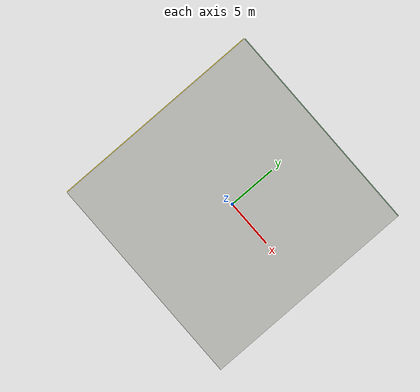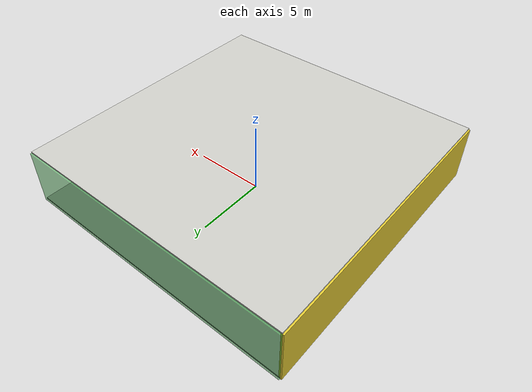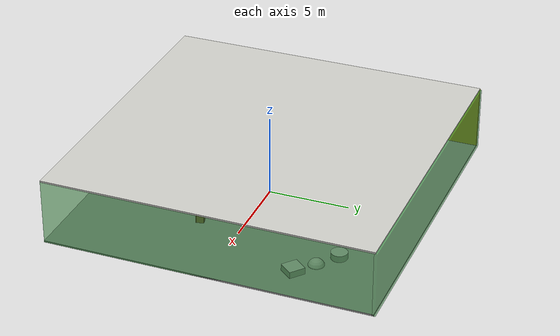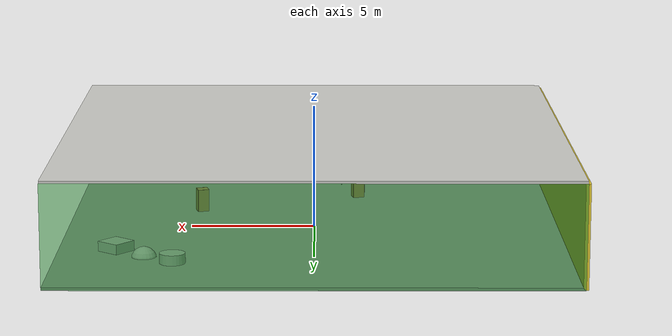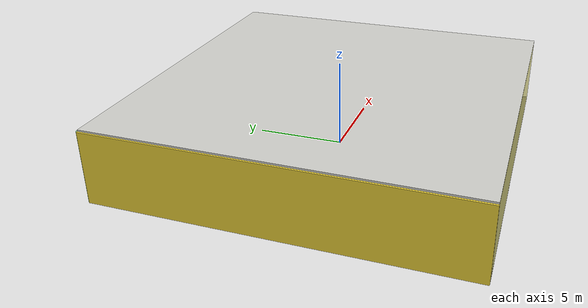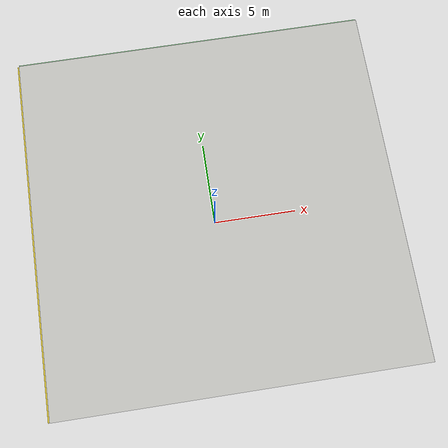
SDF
<sdf version="1.4">
 <world name="default">
  <physics type="ode">
   <max_step_size>0.001</max_step_size>
   <real_time_factor>1</real_time_factor>
   <real_time_update_rate>1000</real_time_update_rate>
   <gravity>0 0 -9.8</gravity>
  </physics>
  <scene><ambient>0.4 0.4 0.4 1</ambient><background>0.7 0.7 0.7 1</background><shadows>1</shadows></scene>
  <model name="Surrounding">
   <static>1</static>
   <link name="Ceiling">
    <collision name="Ceiling_Collision"><geometry><box><size>20 20 0.1</size></box></geometry></collision>
    <visual name="Ceiling_Visual">
     <geometry><box><size>20 20 0.1</size></box></geometry>
     <material>
      <script><uri>file://media/materials/scripts/gazebo.material</uri><name>Gazebo/CeilingTiled</name></script>
     </material>
    </visual>
    <pose>0 0 4.05 0 0 0</pose>
   </link>
   <link name="Wall_South">
    <collision name="Wall_South_Collision">
     <geometry><box><size>20 0 4</size></box></geometry>
     <pose>0 0 2 0 -0 0</pose>
    </collision>
    <visual name="Wall_South_Visual">
     <pose>0 0 2 0 -0 0</pose>
     <geometry><box><size>20 0 4</size></box></geometry>
     <material>
      <script>
       <uri>file://media/materials/scripts/gazebo.material</uri>
       <name>Gazebo/YellowTransparent</name>
      </script>
     </material>
    </visual>
    <velocity_decay><linear>0</linear><angular>0</angular></velocity_decay>
    <pose>0 -10 0 0 -0 0</pose>
   </link>
   <link name="Wall_East">
    <collision name="Wall_21_Collision">
     <geometry><box><size>20 0 4</size></box></geometry>
     <pose>0 0 2 0 -0 0</pose>
    </collision>
    <visual name="Wall_21_Visual">
     <pose>0 0 2 0 -0 0</pose>
     <geometry><box><size>20 0 4</size></box></geometry>
     <material>
      <script><uri>file://media/materials/scripts/gazebo.material</uri><name>Gazebo/GreenTransparent</name></script>
     </material>
    </visual>
    <velocity_decay><linear>0</linear><angular>0</angular></velocity_decay>
    <pose>10 0 0 0 -0 1.5708</pose>
   </link>
   <link name="Wall_North">
    <collision name="Wall_22_Collision">
     <geometry><box><size>20 0.2 4</size></box></geometry>
     <pose>0 0 2 0 -0 0</pose>
    </collision>
    <visual name="Wall_22_Visual">
     <pose>0 0 2 0 -0 0</pose>
     <geometry><box><size>20 0.2 4</size></box></geometry>
     <material>
      <script><uri>file://media/materials/scripts/gazebo.material</uri><name>Gazebo/GreenTransparent</name></script>
     </material>
    </visual>
    <velocity_decay><linear>0</linear><angular>0</angular></velocity_decay>
    <pose>0 10 0 0 -0 0</pose>
   </link>
   <link name="Wall_West">
    <collision name="Wall_23_Collision">
     <geometry><box><size>20 0.2 4</size></box></geometry>
     <pose>0 0 2 0 -0 0</pose>
    </collision>
    <visual name="Wall_23_Visual">
     <pose>0 0 2 0 -0 0</pose>
     <geometry><box><size>20 0.2 4</size></box></geometry>
     <material>
      <script><uri>file://media/materials/scripts/gazebo.material</uri><name>Gazebo/ZincYellow</name></script>
     </material>
    </visual>
    <velocity_decay><linear>0</linear><angular>0</angular></velocity_decay>
    <pose>-10 0 0 0 0 -1.5708</pose>
   </link>
   <link name="Ground_link">
    <collision name="collision">
     <pose>0 0 .05 0 -0 0</pose>
     <geometry><box><size>20 20 0.1</size></box></geometry>
    </collision>
    <visual name="visual">
     <pose>0 0 .05 0 -0 0</pose>
     <geometry><box><size>20 20 0.1</size></box></geometry>
     <material>
      <script><uri>file://media/materials/scripts/gazebo.material</uri><name>Gazebo/Grey</name></script>
     </material>
    </visual>
   </link>
   <static>1</static>
  </model>
  <spherical_coordinates>
   <surface_model>EARTH_WGS84</surface_model>
   <latitude_deg>0</latitude_deg>
   <longitude_deg>0</longitude_deg>
   <elevation>0</elevation>
   <heading_deg>0</heading_deg>
  </spherical_coordinates>
  <light name="lightball_0" type="diffuse">
   <diffuse>0.8 0.8 0.8 1</diffuse>
   <specular>0.2 0.2 0.2 1</specular>
   <attenuation>
    <range>100</range>
    <constant>0.7</constant>
    <linear>0.01</linear>
    <quadratic>0.001</quadratic>
   </attenuation>
   <direction>-0.5 0.1 -0.9</direction>
   <pose>7.63874099924 -7.63975851068 3.10632705325 0 0 0</pose>
  </light>
  <light name="lightball_1" type="diffuse">
   <diffuse>0.8 0.8 0.8 1</diffuse>
   <specular>0.2 0.2 0.2 1</specular>
   <attenuation>
    <range>100</range>
    <constant>0.7</constant>
    <linear>0.01</linear>
    <quadratic>0.001</quadratic>
   </attenuation>
   <direction>-0.5 0.1 -0.9</direction>
   <pose>9.93407221955 -0.731223642835 1.97419107181 0 0 0</pose>
  </light>
  <light name="lightball_2" type="diffuse">
   <diffuse>0.8 0.8 0.8 1</diffuse>
   <specular>0.2 0.2 0.2 1</specular>
   <attenuation>
    <range>100</range>
    <constant>0.7</constant>
    <linear>0.01</linear>
    <quadratic>0.001</quadratic>
   </attenuation>
   <direction>-0.5 0.1 -0.9</direction>
   <pose>-9.4624525961 -7.93553062533 2.71070084704 0 0 0</pose>
  </light>
  <light name="lightball_3" type="diffuse">
   <diffuse>0.8 0.8 0.8 1</diffuse>
   <specular>0.2 0.2 0.2 1</specular>
   <attenuation>
    <range>100</range>
    <constant>0.7</constant>
    <linear>0.01</linear>
    <quadratic>0.001</quadratic>
   </attenuation>
   <direction>-0.5 0.1 -0.9</direction>
   <pose>4.02303278325 8.97529651886 1.48641419685 0 0 0</pose>
  </light>
  <include><uri>model://table</uri><pose>-1.2629696623 -8.27936221509 0 0 0 1.96283121839</pose></include>
  <include><uri>model://cabinet</uri><pose>-1.84281533753 -5.16696504626 0 0 0 1.77707554328</pose></include>
  <include><uri>model://cabinet</uri><pose>4.69497578116 -2.5092327954 0 0 0 0.241759426254</pose></include>
  <include>
   <uri>model://textured_shapes</uri>
   <pose>6.56423654377 5.41862399255 0 0 0 0.880835217418</pose>
  </include>
 </world>
</sdf>

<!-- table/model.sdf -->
<sdf version="1.5">
  <model name="table">
    <static>true</static>
    <link name="link">
      <collision name="surface">
        <pose>0 0 1.0 0 0 0</pose>
        <geometry>
          <box>
            <size>1.5 0.8 0.03</size>
          </box>
        </geometry>
        <surface>
          <friction>
            <ode>
              <mu>0.6</mu>
              <mu2>0.6</mu2>
            </ode>
          </friction>
        </surface>
      </collision>
      <visual name="visual1">
        <pose>0 0 1.0 0 0 0</pose>
        <geometry>
          <box>
            <size>1.5 0.8 0.03</size>
          </box>
        </geometry>
        <material>
          <script>
            <uri>model://media/materials/scripts/gazebo.material</uri>
            <name>Gazebo/Wood</name>
          </script>
        </material>
      </visual>
      <collision name="front_left_leg">
        <pose>0.68 0.38 0.5 0 0 0</pose>
        <geometry>
          <cylinder>
            <radius>0.02</radius>
            <length>1.0</length>
          </cylinder>
        </geometry>
      </collision>
      <visual name="front_left_leg">
        <pose>0.68 0.38 0.5 0 0 0</pose>
        <geometry>
          <cylinder>
            <radius>0.02</radius>
            <length>1.0</length>
          </cylinder>
        </geometry>
        <material>
          <script>
            <uri>model://media/materials/scripts/gazebo.material</uri>
            <name>Gazebo/Grey</name>
          </script>
        </material>
      </visual>
      <collision name="front_right_leg">
        <pose>0.68 -0.38 0.5 0 0 0</pose>
        <geometry>
          <cylinder>
            <radius>0.02</radius>
            <length>1.0</length>
          </cylinder>
        </geometry>
      </collision>
      <visual name="front_right_leg">
        <pose>0.68 -0.38 0.5 0 0 0</pose>
        <geometry>
          <cylinder>
            <radius>0.02</radius>
            <length>1.0</length>
          </cylinder>
        </geometry>
        <material>
          <script>
            <uri>model://media/materials/scripts/gazebo.material</uri>
            <name>Gazebo/Grey</name>
          </script>
        </material>
      </visual>
      <collision name="back_right_leg">
        <pose>-0.68 -0.38 0.5 0 0 0</pose>
        <geometry>
          <cylinder>
            <radius>0.02</radius>
            <length>1.0</length>
          </cylinder>
        </geometry>
      </collision>
      <visual name="back_right_leg">
        <pose>-0.68 -0.38 0.5 0 0 0</pose>
        <geometry>
          <cylinder>
            <radius>0.02</radius>
            <length>1.0</length>
          </cylinder>
        </geometry>
        <material>
          <script>
            <uri>model://media/materials/scripts/gazebo.material</uri>
            <name>Gazebo/Grey</name>
          </script>
        </material>
      </visual>
      <collision name="back_left_leg">
        <pose>-0.68 0.38 0.5 0 0 0</pose>
        <geometry>
          <cylinder>
            <radius>0.02</radius>
            <length>1.0</length>
          </cylinder>
        </geometry>
      </collision>
      <visual name="back_left_leg">
        <pose>-0.68 0.38 0.5 0 0 0</pose>
        <geometry>
          <cylinder>
            <radius>0.02</radius>
            <length>1.0</length>
          </cylinder>
        </geometry>
        <material>
          <script>
            <uri>model://media/materials/scripts/gazebo.material</uri>
            <name>Gazebo/Grey</name>
          </script>
        </material>
      </visual>
    </link>
  </model>
</sdf>

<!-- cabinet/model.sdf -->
<sdf version="1.5">
  <model name="cabinet">
    <static>true</static>
    <link name="cabinet_bottom_plate">
      <inertial>
        <pose>0 0 -1 0 0 0</pose>
        <inertia>
          <ixx>2.050000</ixx>
          <ixy>0</ixy>
          <ixz>0</ixz>
          <iyy>2.050000</iyy>
          <iyz>0</iyz>
          <izz>2.050000</izz>
        </inertia>
        <mass>25.000000</mass>
      </inertial>
      <collision name="cabinet_bottom_plate_geom">
        <pose>0 0 0.010000 0 0 0</pose>
        <geometry>
          <box>
            <size>0.450000 0.450000 0.020000</size>
          </box>
        </geometry>
      </collision>
      <visual name="cabinet_bottom_plate_geom_visual">
        <pose>0 0 0.010000 0 0 0</pose>
        <geometry>
          <box>
            <size>0.450000 0.450000 0.020000</size>
          </box>
        </geometry>
        <material>
          <script>
            <uri>model://media/materials/scripts/gazebo.material</uri>
            <name>Gazebo/Wood</name>
          </script>
        </material>
      </visual>
      <collision name="cabinet_bottom_plate_geom_cabinet_back_plate">
        <pose>0.235000 0 0.510000 0 0 0</pose>
        <geometry>
          <box>
            <size>0.020000 0.450000 1.020000</size>
          </box>
        </geometry>
      </collision>
      <visual name="cabinet_bottom_plate_geom_cabinet_back_plate_visual">
        <pose>0.235000 0 0.510000 0 0 0</pose>
        <geometry>
          <box>
            <size>0.020000 0.450000 1.020000</size>
          </box>
        </geometry>
        <material>
          <script>
            <uri>model://media/materials/scripts/gazebo.material</uri>
            <name>Gazebo/Wood</name>
          </script>
        </material>
      </visual>
      <collision name="cabinet_bottom_plate_geom_cabinet_left_plate">
        <pose>0 0.235000 0.510000 0 0 0</pose>
        <geometry>
          <box>
            <size>0.450000 0.020000 1.020000</size>
          </box>
        </geometry>
      </collision>
      <visual name="cabinet_bottom_plate_geom_cabinet_left_plate_visual">
        <pose>0 0.235000 0.510000 0 0 0</pose>
        <geometry>
          <box>
            <size>0.450000 0.020000 1.020000</size>
          </box>
        </geometry>
        <material>
          <script>
            <uri>model://media/materials/scripts/gazebo.material</uri>
            <name>Gazebo/Wood</name>
          </script>
        </material>
      </visual>
      <collision name="cabinet_bottom_plate_geom_cabinet_middle_plate">
        <pose>0 0 0.510000 0 0 0</pose>
        <geometry>
          <box>
            <size>0.450000 0.450000 0.020000</size>
          </box>
        </geometry>
      </collision>
      <visual name="cabinet_bottom_plate_geom_cabinet_middle_plate_visual">
        <pose>0 0 0.510000 0 0 0</pose>
        <geometry>
          <box>
            <size>0.450000 0.450000 0.020000</size>
          </box>
        </geometry>
        <material>
          <script>
            <uri>model://media/materials/scripts/gazebo.material</uri>
            <name>Gazebo/Wood</name>
          </script>
        </material>
      </visual>
      <collision name="cabinet_bottom_plate_geom_cabinet_right_plate">
        <pose>0 -0.235000 0.510000 0 0 0</pose>
        <geometry>
          <box>
            <size>0.450000 0.020000 1.020000</size>
          </box>
        </geometry>
      </collision>
      <visual name="cabinet_bottom_plate_geom_cabinet_right_plate_visual">
        <pose>0 -0.235000 0.510000 0 0 0</pose>
        <geometry>
          <box>
            <size>0.450000 0.020000 1.020000</size>
          </box>
        </geometry>
        <material>
          <script>
            <uri>model://media/materials/scripts/gazebo.material</uri>
            <name>Gazebo/Wood</name>
          </script>
        </material>
      </visual>
      <collision name="cabinet_bottom_plate_geom_cabinet_top_plate">
        <pose>0 0 1.010000 0 0 0</pose>
        <geometry>
          <box>
            <size>0.450000 0.450000 0.020000</size>
          </box>
        </geometry>
      </collision>
      <visual name="cabinet_bottom_plate_geom_cabinet_top_plate_visual">
        <pose>0 0 1.010000 0 0 0</pose>
        <geometry>
          <box>
            <size>0.450000 0.450000 0.020000</size>
          </box>
        </geometry>
        <material>
          <script>
            <uri>model://media/materials/scripts/gazebo.material</uri>
            <name>Gazebo/Wood</name>
          </script>
        </material>
      </visual>
    </link>
  </model>
</sdf>

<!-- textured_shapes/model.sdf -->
<sdf version="1.6">
  <model name="textured_shapes">
    <pose>0 0 0.5 0 0 0</pose>
    <link name="box">
      <pose>0 -1.5 0 0 0 0</pose>
      <collision name="collision">
        <geometry>
          <box>
            <size>1 1 1</size>
          </box>
        </geometry>
      </collision>
      <visual name="visual">
        <geometry>
          <box>
            <size>1 1 1</size>
          </box>
        </geometry>
        <material>
          <script>
            <uri>model://../model_source/models/textured_shapes/materials/scripts</uri>
            <uri>model://../model_source/models/textured_shapes/materials/textures</uri>
            <name>TexturedShape/Squares</name>
          </script>
        </material>
      </visual>
    </link>
    <link name="sphere">
      <collision name="collision">
        <geometry>
          <sphere>
            <radius>0.5</radius>
          </sphere>
        </geometry>
      </collision>
      <visual name="visual">
        <geometry>
          <sphere>
            <radius>0.5</radius>
          </sphere>
        </geometry>
        <material>
          <script>
            <uri>model://../model_source/models/textured_shapes/materials/scripts</uri>
            <uri>model://../model_source/models/textured_shapes/materials/textures</uri>
            <name>TexturedShape/Squares</name>
          </script>
        </material>
      </visual>
    </link>
    <link name="cylinder">
      <pose>0 1.5 0 0 0 0</pose>
      <collision name="collision">
        <geometry>
          <cylinder>
            <radius>0.5</radius>
            <length>1</length>
          </cylinder>
        </geometry>
      </collision>
      <visual name="visual">
        <geometry>
          <cylinder>
            <radius>0.5</radius>
            <length>1</length>
          </cylinder>
        </geometry>
        <material>
          <script>
            <uri>model://../model_source/models/textured_shapes/materials/scripts</uri>
            <uri>model://../model_source/models/textured_shapes/materials/textures</uri>
            <name>TexturedShape/Squares</name>
          </script>
        </material>
      </visual>
    </link>
  </model>
</sdf>
